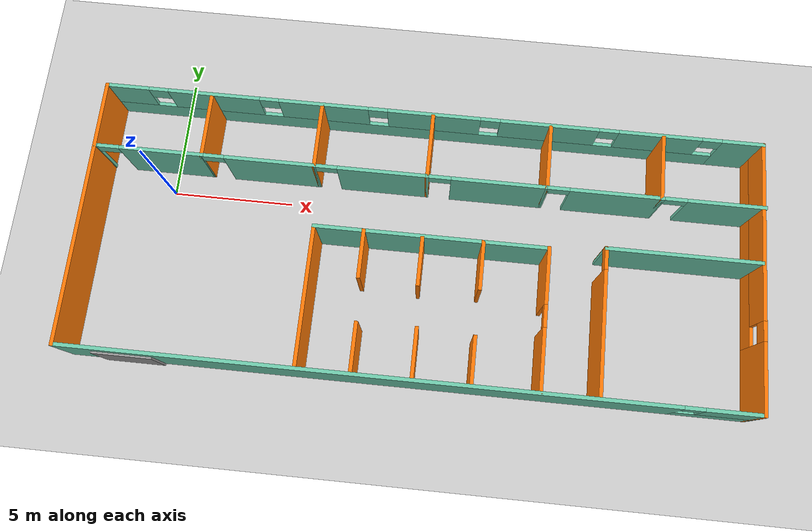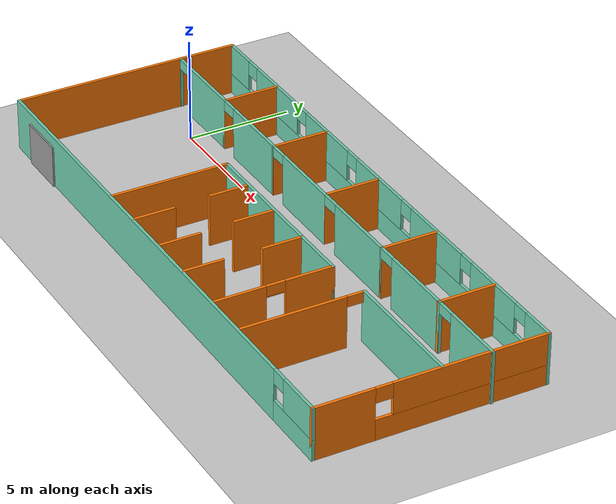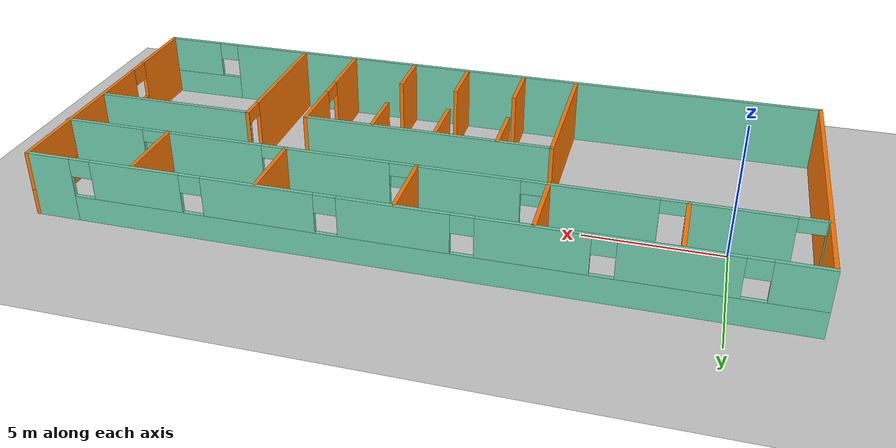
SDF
<sdf version="1.6">
 <world name="default">
  <model name="ground_plane">
   <static>1</static>
   <link name="link">
    <collision name="collision">
     <geometry><plane><normal>0 0 1</normal><size>100 100</size></plane></geometry>
     <surface>
      <contact><collide_bitmask>65535</collide_bitmask></contact>
      <friction><ode><mu>100</mu><mu2>50</mu2></ode></friction>
     </surface>
    </collision>
    <visual name="visual">
     <cast_shadows>0</cast_shadows>
     <geometry><plane><normal>0 0 1</normal><size>100 100</size></plane></geometry>
     <material>
      <script><uri>file://media/materials/scripts/gazebo.material</uri><name>Gazebo/Grey</name></script>
     </material>
    </visual>
   </link>
  </model>
  <model name="myoffice">
   <pose>10.6862 -1.75386 0 0 -0 0</pose>
   <link name="Door_7">
    <collision name="Door_7_Collision">
     <geometry><box><size>2.38961 0.2 2</size></box></geometry>
     <pose>0 0 1 0 -0 0</pose>
    </collision>
    <visual name="Door_7_Visual">
     <pose>0 0 1 0 -0 0</pose>
     <geometry><box><size>2.38961 0.2 2</size></box></geometry>
     <material>
      <script><uri>file://media/materials/scripts/gazebo.material</uri><name>Gazebo/Grey</name></script>
     </material>
    </visual>
    <pose>-11.023 -5.48096 0 0 -0 0</pose>
   </link>
   <link name="Wall_10">
    <pose>-11.3485 2.7385 0 0 -0 0</pose>
    <visual name="Wall_10_Visual_0">
     <pose>-2.1848 0 1.25 0 -0 0</pose>
     <geometry><box><size>0.130403 0.15 2.5</size></box></geometry>
     <material>
      <script><uri>file://media/materials/scripts/gazebo.material</uri><name>Gazebo/Grey</name></script>
      <ambient>0.435294 0.796078 0.67451 1</ambient>
     </material>
     <meta><layer>0</layer></meta>
    </visual>
    <collision name="Wall_10_Collision_0">
     <geometry><box><size>0.130403 0.15 2.5</size></box></geometry>
     <pose>-2.1848 0 1.25 0 -0 0</pose>
    </collision>
    <visual name="Wall_10_Visual_1">
     <pose>0.515202 0 1.25 0 -0 0</pose>
     <geometry><box><size>3.4696 0.15 2.5</size></box></geometry>
     <material>
      <script><uri>file://media/materials/scripts/gazebo.material</uri><name>Gazebo/Grey</name></script>
      <ambient>0.435294 0.796078 0.67451 1</ambient>
     </material>
     <meta><layer>0</layer></meta>
    </visual>
    <collision name="Wall_10_Collision_1">
     <geometry><box><size>3.4696 0.15 2.5</size></box></geometry>
     <pose>0.515202 0 1.25 0 -0 0</pose>
    </collision>
    <visual name="Wall_10_Visual_2">
     <pose>-1.6696 0 2.25 0 -0 0</pose>
     <geometry><box><size>0.9 0.15 0.5</size></box></geometry>
     <material>
      <script><uri>file://media/materials/scripts/gazebo.material</uri><name>Gazebo/Grey</name></script>
      <ambient>0.435294 0.796078 0.67451 1</ambient>
     </material>
     <meta><layer>0</layer></meta>
    </visual>
    <collision name="Wall_10_Collision_2">
     <geometry><box><size>0.9 0.15 0.5</size></box></geometry>
     <pose>-1.6696 0 2.25 0 -0 0</pose>
    </collision>
   </link>
   <link name="Wall_11">
    <collision name="Wall_11_Collision">
     <geometry><box><size>2.75 0.15 2.5</size></box></geometry>
     <pose>0 0 1.25 0 -0 0</pose>
    </collision>
    <visual name="Wall_11_Visual">
     <pose>0 0 1.25 0 -0 0</pose>
     <geometry><box><size>2.75 0.15 2.5</size></box></geometry>
     <material>
      <script><uri>file://media/materials/scripts/gazebo.material</uri><name>Gazebo/Grey</name></script>
      <ambient>0.996078 0.47451 0.0196078 1</ambient>
     </material>
     <meta><layer>0</layer></meta>
    </visual>
    <pose>-9.17347 4.0385 0 0 -0 1.5708</pose>
   </link>
   <link name="Wall_13">
    <pose>-6.87323 2.73825 0 0 -0 -0.000108</pose>
    <visual name="Wall_13_Visual_0">
     <pose>-2.33029 0 1.25 0 -0 0</pose>
     <geometry><box><size>0.089414 0.15 2.5</size></box></geometry>
     <material>
      <script><uri>file://media/materials/scripts/gazebo.material</uri><name>Gazebo/Grey</name></script>
      <ambient>0.435294 0.796078 0.67451 1</ambient>
     </material>
     <meta><layer>0</layer></meta>
    </visual>
    <collision name="Wall_13_Collision_0">
     <geometry><box><size>0.089414 0.15 2.5</size></box></geometry>
     <pose>-2.33029 0 1.25 0 -0 0</pose>
    </collision>
    <visual name="Wall_13_Visual_1">
     <pose>0.494707 0 1.25 0 -0 0</pose>
     <geometry><box><size>3.76059 0.15 2.5</size></box></geometry>
     <material>
      <script><uri>file://media/materials/scripts/gazebo.material</uri><name>Gazebo/Grey</name></script>
      <ambient>0.435294 0.796078 0.67451 1</ambient>
     </material>
     <meta><layer>0</layer></meta>
    </visual>
    <collision name="Wall_13_Collision_1">
     <geometry><box><size>3.76059 0.15 2.5</size></box></geometry>
     <pose>0.494707 0 1.25 0 -0 0</pose>
    </collision>
    <visual name="Wall_13_Visual_2">
     <pose>-1.83559 0 2.25 0 -0 0</pose>
     <geometry><box><size>0.9 0.15 0.5</size></box></geometry>
     <material>
      <script><uri>file://media/materials/scripts/gazebo.material</uri><name>Gazebo/Grey</name></script>
      <ambient>0.435294 0.796078 0.67451 1</ambient>
     </material>
     <meta><layer>0</layer></meta>
    </visual>
    <collision name="Wall_13_Collision_2">
     <geometry><box><size>0.9 0.15 0.5</size></box></geometry>
     <pose>-1.83559 0 2.25 0 -0 0</pose>
    </collision>
   </link>
   <link name="Wall_17">
    <collision name="Wall_17_Collision">
     <geometry><box><size>2.75 0.15 2.5</size></box></geometry>
     <pose>0 0 1.25 0 -0 0</pose>
    </collision>
    <visual name="Wall_17_Visual">
     <pose>0 0 1.25 0 -0 0</pose>
     <geometry><box><size>2.75 0.15 2.5</size></box></geometry>
     <material>
      <script><uri>file://media/materials/scripts/gazebo.material</uri><name>Gazebo/Grey</name></script>
      <ambient>0.996078 0.47451 0.0196078 1</ambient>
     </material>
     <meta><layer>0</layer></meta>
    </visual>
    <pose>-4.573 4.038 0 0 -0 1.5708</pose>
   </link>
   <link name="Wall_19">
    <pose>-2.273 2.738 0 0 -0 0</pose>
    <visual name="Wall_19_Visual_0">
     <pose>-2.3162 0 1.25 0 -0 0</pose>
     <geometry><box><size>0.117605 0.15 2.5</size></box></geometry>
     <material>
      <script><uri>file://media/materials/scripts/gazebo.material</uri><name>Gazebo/Grey</name></script>
      <ambient>0.435294 0.796078 0.67451 1</ambient>
     </material>
     <meta><layer>0</layer></meta>
    </visual>
    <collision name="Wall_19_Collision_0">
     <geometry><box><size>0.117605 0.15 2.5</size></box></geometry>
     <pose>-2.3162 0 1.25 0 -0 0</pose>
    </collision>
    <visual name="Wall_19_Visual_1">
     <pose>0.508802 0 1.25 0 -0 0</pose>
     <geometry><box><size>3.73239 0.15 2.5</size></box></geometry>
     <material>
      <script><uri>file://media/materials/scripts/gazebo.material</uri><name>Gazebo/Grey</name></script>
      <ambient>0.435294 0.796078 0.67451 1</ambient>
     </material>
     <meta><layer>0</layer></meta>
    </visual>
    <collision name="Wall_19_Collision_1">
     <geometry><box><size>3.73239 0.15 2.5</size></box></geometry>
     <pose>0.508802 0 1.25 0 -0 0</pose>
    </collision>
    <visual name="Wall_19_Visual_2">
     <pose>-1.8074 0 2.25 0 -0 0</pose>
     <geometry><box><size>0.9 0.15 0.5</size></box></geometry>
     <material>
      <script><uri>file://media/materials/scripts/gazebo.material</uri><name>Gazebo/Grey</name></script>
      <ambient>0.435294 0.796078 0.67451 1</ambient>
     </material>
     <meta><layer>0</layer></meta>
    </visual>
    <collision name="Wall_19_Collision_2">
     <geometry><box><size>0.9 0.15 0.5</size></box></geometry>
     <pose>-1.8074 0 2.25 0 -0 0</pose>
    </collision>
   </link>
   <link name="Wall_20">
    <collision name="Wall_20_Collision">
     <geometry><box><size>2.75 0.15 2.5</size></box></geometry>
     <pose>0 0 1.25 0 -0 0</pose>
    </collision>
    <visual name="Wall_20_Visual">
     <pose>0 0 1.25 0 -0 0</pose>
     <geometry><box><size>2.75 0.15 2.5</size></box></geometry>
     <material>
      <script><uri>file://media/materials/scripts/gazebo.material</uri><name>Gazebo/Grey</name></script>
      <ambient>0.996078 0.47451 0.0196078 1</ambient>
     </material>
     <meta><layer>0</layer></meta>
    </visual>
    <pose>0.027 4.038 0 0 -0 1.5708</pose>
   </link>
   <link name="Wall_22">
    <pose>2.452 2.738 0 0 -0 0</pose>
    <visual name="Wall_22_Visual_0">
     <pose>-2.42698 0 1.25 0 -0 0</pose>
     <geometry><box><size>0.146039 0.15 2.5</size></box></geometry>
     <material>
      <script><uri>file://media/materials/scripts/gazebo.material</uri><name>Gazebo/Grey</name></script>
      <ambient>0.435294 0.796078 0.67451 1</ambient>
     </material>
     <meta><layer>0</layer></meta>
    </visual>
    <collision name="Wall_22_Collision_0">
     <geometry><box><size>0.146039 0.15 2.5</size></box></geometry>
     <pose>-2.42698 0 1.25 0 -0 0</pose>
    </collision>
    <visual name="Wall_22_Visual_1">
     <pose>0.523019 0 1.25 0 -0 0</pose>
     <geometry><box><size>3.95396 0.15 2.5</size></box></geometry>
     <material>
      <script><uri>file://media/materials/scripts/gazebo.material</uri><name>Gazebo/Grey</name></script>
      <ambient>0.435294 0.796078 0.67451 1</ambient>
     </material>
     <meta><layer>0</layer></meta>
    </visual>
    <collision name="Wall_22_Collision_1">
     <geometry><box><size>3.95396 0.15 2.5</size></box></geometry>
     <pose>0.523019 0 1.25 0 -0 0</pose>
    </collision>
    <visual name="Wall_22_Visual_2">
     <pose>-1.90396 0 2.25 0 -0 0</pose>
     <geometry><box><size>0.9 0.15 0.5</size></box></geometry>
     <material>
      <script><uri>file://media/materials/scripts/gazebo.material</uri><name>Gazebo/Grey</name></script>
      <ambient>0.435294 0.796078 0.67451 1</ambient>
     </material>
     <meta><layer>0</layer></meta>
    </visual>
    <collision name="Wall_22_Collision_2">
     <geometry><box><size>0.9 0.15 0.5</size></box></geometry>
     <pose>-1.90396 0 2.25 0 -0 0</pose>
    </collision>
   </link>
   <link name="Wall_23">
    <collision name="Wall_23_Collision">
     <geometry><box><size>2.75 0.15 2.5</size></box></geometry>
     <pose>0 0 1.25 0 -0 0</pose>
    </collision>
    <visual name="Wall_23_Visual">
     <pose>0 0 1.25 0 -0 0</pose>
     <geometry><box><size>2.75 0.15 2.5</size></box></geometry>
     <material>
      <script><uri>file://media/materials/scripts/gazebo.material</uri><name>Gazebo/Grey</name></script>
      <ambient>0.996078 0.47451 0.0196078 1</ambient>
     </material>
     <meta><layer>0</layer></meta>
    </visual>
    <pose>4.877 4.038 0 0 -0 1.5708</pose>
   </link>
   <link name="Wall_25">
    <pose>7.177 2.738 0 0 -0 0</pose>
    <visual name="Wall_25_Visual_0">
     <pose>-2.33296 0 1.25 0 -0 0</pose>
     <geometry><box><size>0.084074 0.15 2.5</size></box></geometry>
     <material>
      <script><uri>file://media/materials/scripts/gazebo.material</uri><name>Gazebo/Grey</name></script>
      <ambient>0.435294 0.796078 0.67451 1</ambient>
     </material>
     <meta><layer>0</layer></meta>
    </visual>
    <collision name="Wall_25_Collision_0">
     <geometry><box><size>0.084074 0.15 2.5</size></box></geometry>
     <pose>-2.33296 0 1.25 0 -0 0</pose>
    </collision>
    <visual name="Wall_25_Visual_1">
     <pose>0.492037 0 1.25 0 -0 0</pose>
     <geometry><box><size>3.76593 0.15 2.5</size></box></geometry>
     <material>
      <script><uri>file://media/materials/scripts/gazebo.material</uri><name>Gazebo/Grey</name></script>
      <ambient>0.435294 0.796078 0.67451 1</ambient>
     </material>
     <meta><layer>0</layer></meta>
    </visual>
    <collision name="Wall_25_Collision_1">
     <geometry><box><size>3.76593 0.15 2.5</size></box></geometry>
     <pose>0.492037 0 1.25 0 -0 0</pose>
    </collision>
    <visual name="Wall_25_Visual_2">
     <pose>-1.84093 0 2.25 0 -0 0</pose>
     <geometry><box><size>0.9 0.15 0.5</size></box></geometry>
     <material>
      <script><uri>file://media/materials/scripts/gazebo.material</uri><name>Gazebo/Grey</name></script>
      <ambient>0.435294 0.796078 0.67451 1</ambient>
     </material>
     <meta><layer>0</layer></meta>
    </visual>
    <collision name="Wall_25_Collision_2">
     <geometry><box><size>0.9 0.15 0.5</size></box></geometry>
     <pose>-1.84093 0 2.25 0 -0 0</pose>
    </collision>
   </link>
   <link name="Wall_26">
    <collision name="Wall_26_Collision">
     <geometry><box><size>2.75 0.15 2.5</size></box></geometry>
     <pose>0 0 1.25 0 -0 0</pose>
    </collision>
    <visual name="Wall_26_Visual">
     <pose>0 0 1.25 0 -0 0</pose>
     <geometry><box><size>2.75 0.15 2.5</size></box></geometry>
     <material>
      <script><uri>file://media/materials/scripts/gazebo.material</uri><name>Gazebo/Grey</name></script>
      <ambient>0.996078 0.47451 0.0196078 1</ambient>
     </material>
     <meta><layer>0</layer></meta>
    </visual>
    <pose>9.477 4.038 0 0 -0 1.5708</pose>
   </link>
   <link name="Wall_28">
    <pose>11.527 2.738 0 0 -0 0</pose>
    <visual name="Wall_28_Visual_0">
     <pose>-2.02885 0 1.25 0 -0 0</pose>
     <geometry><box><size>0.19231 0.15 2.5</size></box></geometry>
     <material>
      <script><uri>file://media/materials/scripts/gazebo.material</uri><name>Gazebo/Grey</name></script>
      <ambient>0.435294 0.796078 0.67451 1</ambient>
     </material>
     <meta><layer>0</layer></meta>
    </visual>
    <collision name="Wall_28_Collision_0">
     <geometry><box><size>0.19231 0.15 2.5</size></box></geometry>
     <pose>-2.02885 0 1.25 0 -0 0</pose>
    </collision>
    <visual name="Wall_28_Visual_1">
     <pose>0.546155 0 1.25 0 -0 0</pose>
     <geometry><box><size>3.15769 0.15 2.5</size></box></geometry>
     <material>
      <script><uri>file://media/materials/scripts/gazebo.material</uri><name>Gazebo/Grey</name></script>
      <ambient>0.435294 0.796078 0.67451 1</ambient>
     </material>
     <meta><layer>0</layer></meta>
    </visual>
    <collision name="Wall_28_Collision_1">
     <geometry><box><size>3.15769 0.15 2.5</size></box></geometry>
     <pose>0.546155 0 1.25 0 -0 0</pose>
    </collision>
    <visual name="Wall_28_Visual_2">
     <pose>-1.48269 0 2.25 0 -0 0</pose>
     <geometry><box><size>0.9 0.15 0.5</size></box></geometry>
     <material>
      <script><uri>file://media/materials/scripts/gazebo.material</uri><name>Gazebo/Grey</name></script>
      <ambient>0.435294 0.796078 0.67451 1</ambient>
     </material>
     <meta><layer>0</layer></meta>
    </visual>
    <collision name="Wall_28_Collision_2">
     <geometry><box><size>0.9 0.15 0.5</size></box></geometry>
     <pose>-1.48269 0 2.25 0 -0 0</pose>
    </collision>
   </link>
   <link name="Wall_33">
    <pose>7.35769 -2.47616 0 0 -0 1.5708</pose>
    <visual name="Wall_33_Visual_0">
     <pose>-0.46098 0 1.25 0 -0 0</pose>
     <geometry><box><size>5.07804 0.15 2.5</size></box></geometry>
     <material>
      <script><uri>file://media/materials/scripts/gazebo.material</uri><name>Gazebo/Grey</name></script>
      <ambient>0.996078 0.47451 0.0196078 1</ambient>
     </material>
     <meta><layer>0</layer></meta>
    </visual>
    <collision name="Wall_33_Collision_0">
     <geometry><box><size>5.07804 0.15 2.5</size></box></geometry>
     <pose>-0.46098 0 1.25 0 -0 0</pose>
    </collision>
    <visual name="Wall_33_Visual_1">
     <pose>2.98902 0 1.25 0 -0 0</pose>
     <geometry><box><size>0.021959 0.15 2.5</size></box></geometry>
     <material>
      <script><uri>file://media/materials/scripts/gazebo.material</uri><name>Gazebo/Grey</name></script>
      <ambient>0.996078 0.47451 0.0196078 1</ambient>
     </material>
     <meta><layer>0</layer></meta>
    </visual>
    <collision name="Wall_33_Collision_1">
     <geometry><box><size>0.021959 0.15 2.5</size></box></geometry>
     <pose>2.98902 0 1.25 0 -0 0</pose>
    </collision>
    <visual name="Wall_33_Visual_2">
     <pose>2.52804 0 2.25 0 -0 0</pose>
     <geometry><box><size>0.9 0.15 0.5</size></box></geometry>
     <material>
      <script><uri>file://media/materials/scripts/gazebo.material</uri><name>Gazebo/Grey</name></script>
      <ambient>0.996078 0.47451 0.0196078 1</ambient>
     </material>
     <meta><layer>0</layer></meta>
    </visual>
    <collision name="Wall_33_Collision_2">
     <geometry><box><size>0.9 0.15 0.5</size></box></geometry>
     <pose>2.52804 0 2.25 0 -0 0</pose>
    </collision>
   </link>
   <link name="Wall_34">
    <collision name="Wall_34_Collision">
     <geometry><box><size>6.25 0.15 2.5</size></box></geometry>
     <pose>0 0 1.25 0 -0 0</pose>
    </collision>
    <visual name="Wall_34_Visual">
     <pose>0 0 1.25 0 -0 0</pose>
     <geometry><box><size>6.25 0.15 2.5</size></box></geometry>
     <material>
      <script><uri>file://media/materials/scripts/gazebo.material</uri><name>Gazebo/Grey</name></script>
      <ambient>0.435294 0.796078 0.67451 1</ambient>
     </material>
     <meta><layer>0</layer></meta>
    </visual>
    <pose>10.4077 0.448836 0 0 -0 0</pose>
   </link>
   <link name="Wall_36">
    <collision name="Wall_36_Collision">
     <geometry><box><size>5.75 0.15 2.5</size></box></geometry>
     <pose>0 0 1.25 0 -0 0</pose>
    </collision>
    <visual name="Wall_36_Visual">
     <pose>0 0 1.25 0 -0 0</pose>
     <geometry><box><size>5.75 0.15 2.5</size></box></geometry>
     <material>
      <script><uri>file://media/materials/scripts/gazebo.material</uri><name>Gazebo/Grey</name></script>
      <ambient>0.996078 0.47451 0.0196078 1</ambient>
     </material>
     <meta><layer>0</layer></meta>
    </visual>
    <pose>-4.24 -2.57456 0 0 -0 1.5708</pose>
   </link>
   <link name="Wall_37">
    <collision name="Wall_37_Collision">
     <geometry><box><size>9.5 0.15 2.5</size></box></geometry>
     <pose>0 0 1.25 0 -0 0</pose>
    </collision>
    <visual name="Wall_37_Visual">
     <pose>0 0 1.25 0 -0 0</pose>
     <geometry><box><size>9.5 0.15 2.5</size></box></geometry>
     <material>
      <script><uri>file://media/materials/scripts/gazebo.material</uri><name>Gazebo/Grey</name></script>
      <ambient>0.435294 0.796078 0.67451 1</ambient>
     </material>
     <meta><layer>0</layer></meta>
    </visual>
    <pose>0.435003 0.225437 0 0 -0 0</pose>
   </link>
   <link name="Wall_38">
    <pose>5.11 -2.57456 0 0 -0 -1.5708</pose>
    <visual name="Wall_38_Visual_0">
     <pose>-1.71221 0 1.25 0 -0 0</pose>
     <geometry><box><size>2.32558 0.15 2.5</size></box></geometry>
     <material>
      <script><uri>file://media/materials/scripts/gazebo.material</uri><name>Gazebo/Grey</name></script>
      <ambient>0.996078 0.47451 0.0196078 1</ambient>
     </material>
     <meta><layer>0</layer></meta>
    </visual>
    <collision name="Wall_38_Collision_0">
     <geometry><box><size>2.32558 0.15 2.5</size></box></geometry>
     <pose>-1.71221 0 1.25 0 -0 0</pose>
    </collision>
    <visual name="Wall_38_Visual_1">
     <pose>1.61279 0 1.25 0 -0 0</pose>
     <geometry><box><size>2.52442 0.15 2.5</size></box></geometry>
     <material>
      <script><uri>file://media/materials/scripts/gazebo.material</uri><name>Gazebo/Grey</name></script>
      <ambient>0.996078 0.47451 0.0196078 1</ambient>
     </material>
     <meta><layer>0</layer></meta>
    </visual>
    <collision name="Wall_38_Collision_1">
     <geometry><box><size>2.52442 0.15 2.5</size></box></geometry>
     <pose>1.61279 0 1.25 0 -0 0</pose>
    </collision>
    <visual name="Wall_38_Visual_2">
     <pose>-0.099422 0 2.25 0 -0 0</pose>
     <geometry><box><size>0.9 0.15 0.5</size></box></geometry>
     <material>
      <script><uri>file://media/materials/scripts/gazebo.material</uri><name>Gazebo/Grey</name></script>
      <ambient>0.996078 0.47451 0.0196078 1</ambient>
     </material>
     <meta><layer>0</layer></meta>
    </visual>
    <collision name="Wall_38_Collision_2">
     <geometry><box><size>0.9 0.15 0.5</size></box></geometry>
     <pose>-0.099422 0 2.25 0 -0 0</pose>
    </collision>
   </link>
   <link name="Wall_4">
    <collision name="Wall_4_Collision">
     <geometry><box><size>11 0.15 2.5</size></box></geometry>
     <pose>0 0 1.25 0 -0 0</pose>
    </collision>
    <visual name="Wall_4_Visual">
     <pose>0 0 1.25 0 -0 0</pose>
     <geometry><box><size>11 0.15 2.5</size></box></geometry>
     <material>
      <script><uri>file://media/materials/scripts/gazebo.material</uri><name>Gazebo/Grey</name></script>
      <ambient>0.996078 0.47451 0.0196078 1</ambient>
     </material>
     <meta><layer>0</layer></meta>
    </visual>
    <pose>-13.577 0 0 0 -0 -1.5708</pose>
   </link>
   <link name="Wall_47">
    <collision name="Wall_47_Collision">
     <geometry><box><size>2 0.15 2.5</size></box></geometry>
     <pose>0 0 1.25 0 -0 0</pose>
    </collision>
    <visual name="Wall_47_Visual">
     <pose>0 0 1.25 0 -0 0</pose>
     <geometry><box><size>2 0.15 2.5</size></box></geometry>
     <material>
      <script><uri>file://media/materials/scripts/gazebo.material</uri><name>Gazebo/Grey</name></script>
      <ambient>0.996078 0.47451 0.0196078 1</ambient>
     </material>
     <meta><layer>0</layer></meta>
    </visual>
    <pose>-2.11198 -4.39636 0 0 -0 1.5708</pose>
   </link>
   <link name="Wall_49">
    <collision name="Wall_49_Collision">
     <geometry><box><size>2 0.15 2.5</size></box></geometry>
     <pose>0 0 1.25 0 -0 0</pose>
    </collision>
    <visual name="Wall_49_Visual">
     <pose>0 0 1.25 0 -0 0</pose>
     <geometry><box><size>2 0.15 2.5</size></box></geometry>
     <material>
      <script><uri>file://media/materials/scripts/gazebo.material</uri><name>Gazebo/Grey</name></script>
      <ambient>0.996078 0.47451 0.0196078 1</ambient>
     </material>
     <meta><layer>0</layer></meta>
    </visual>
    <pose>0.228837 -4.36976 0 0 -0 1.5708</pose>
   </link>
   <link name="Wall_51">
    <collision name="Wall_51_Collision">
     <geometry><box><size>2 0.15 2.5</size></box></geometry>
     <pose>0 0 1.25 0 -0 0</pose>
    </collision>
    <visual name="Wall_51_Visual">
     <pose>0 0 1.25 0 -0 0</pose>
     <geometry><box><size>2 0.15 2.5</size></box></geometry>
     <material>
      <script><uri>file://media/materials/scripts/gazebo.material</uri><name>Gazebo/Grey</name></script>
      <ambient>0.996078 0.47451 0.0196078 1</ambient>
     </material>
     <meta><layer>0</layer></meta>
    </visual>
    <pose>2.48985 -4.47616 0 0 -0 1.5708</pose>
   </link>
   <link name="Wall_53">
    <collision name="Wall_53_Collision">
     <geometry><box><size>2 0.15 2.5</size></box></geometry>
     <pose>0 0 1.25 0 -0 0</pose>
    </collision>
    <visual name="Wall_53_Visual">
     <pose>0 0 1.25 0 -0 0</pose>
     <geometry><box><size>2 0.15 2.5</size></box></geometry>
     <material>
      <script><uri>file://media/materials/scripts/gazebo.material</uri><name>Gazebo/Grey</name></script>
      <ambient>0.996078 0.47451 0.0196078 1</ambient>
     </material>
     <meta><layer>0</layer></meta>
    </visual>
    <pose>-2.24498 -0.713522 0 0 -0 -1.5708</pose>
   </link>
   <link name="Wall_55">
    <collision name="Wall_55_Collision">
     <geometry><box><size>2 0.15 2.5</size></box></geometry>
     <pose>0 0 1.25 0 -0 0</pose>
    </collision>
    <visual name="Wall_55_Visual">
     <pose>0 0 1.25 0 -0 0</pose>
     <geometry><box><size>2 0.15 2.5</size></box></geometry>
     <material>
      <script><uri>file://media/materials/scripts/gazebo.material</uri><name>Gazebo/Grey</name></script>
      <ambient>0.996078 0.47451 0.0196078 1</ambient>
     </material>
     <meta><layer>0</layer></meta>
    </visual>
    <pose>0.095836 -0.793322 0 0 -0 -1.5708</pose>
   </link>
   <link name="Wall_57">
    <collision name="Wall_57_Collision">
     <geometry><box><size>2 0.15 2.5</size></box></geometry>
     <pose>0 0 1.25 0 -0 0</pose>
    </collision>
    <visual name="Wall_57_Visual">
     <pose>0 0 1.25 0 -0 0</pose>
     <geometry><box><size>2 0.15 2.5</size></box></geometry>
     <material>
      <script><uri>file://media/materials/scripts/gazebo.material</uri><name>Gazebo/Grey</name></script>
      <ambient>0.996078 0.47451 0.0196078 1</ambient>
     </material>
     <meta><layer>0</layer></meta>
    </visual>
    <pose>2.51645 -0.713522 0 0 -0 -1.5708</pose>
   </link>
   <link name="Wall_6">
    <pose>-0.027 -5.425 0 0 -0 0</pose>
    <visual name="Wall_6_Visual_0">
     <pose>-1.55124 0 1.25 0 -0 0</pose>
     <geometry><box><size>24.1475 0.15 2.5</size></box></geometry>
     <material>
      <script><uri>file://media/materials/scripts/gazebo.material</uri><name>Gazebo/Grey</name></script>
      <ambient>0.435294 0.796078 0.67451 1</ambient>
     </material>
     <meta><layer>0</layer></meta>
    </visual>
    <collision name="Wall_6_Collision_0">
     <geometry><box><size>24.1475 0.15 2.5</size></box></geometry>
     <pose>-1.55124 0 1.25 0 -0 0</pose>
    </collision>
    <visual name="Wall_6_Visual_1">
     <pose>12.0738 0 0.5 0 -0 0</pose>
     <geometry><box><size>3.10248 0.15 1</size></box></geometry>
     <material>
      <script><uri>file://media/materials/scripts/gazebo.material</uri><name>Gazebo/Grey</name></script>
      <ambient>0.435294 0.796078 0.67451 1</ambient>
     </material>
     <meta><layer>0</layer></meta>
    </visual>
    <collision name="Wall_6_Collision_1">
     <geometry><box><size>3.10248 0.15 1</size></box></geometry>
     <pose>12.0738 0 0.5 0 -0 0</pose>
    </collision>
    <visual name="Wall_6_Visual_2">
     <pose>12.4738 0 1.75 0 -0 0</pose>
     <geometry><box><size>2.30248 0.15 1.5</size></box></geometry>
     <material>
      <script><uri>file://media/materials/scripts/gazebo.material</uri><name>Gazebo/Grey</name></script>
      <ambient>0.435294 0.796078 0.67451 1</ambient>
     </material>
     <meta><layer>0</layer></meta>
    </visual>
    <collision name="Wall_6_Collision_2">
     <geometry><box><size>2.30248 0.15 1.5</size></box></geometry>
     <pose>12.4738 0 1.75 0 -0 0</pose>
    </collision>
    <visual name="Wall_6_Visual_3">
     <pose>10.9225 0 2.15 0 -0 0</pose>
     <geometry><box><size>0.8 0.15 0.7</size></box></geometry>
     <material>
      <script><uri>file://media/materials/scripts/gazebo.material</uri><name>Gazebo/Grey</name></script>
      <ambient>0.435294 0.796078 0.67451 1</ambient>
     </material>
     <meta><layer>0</layer></meta>
    </visual>
    <collision name="Wall_6_Collision_3">
     <geometry><box><size>0.8 0.15 0.7</size></box></geometry>
     <pose>10.9225 0 2.15 0 -0 0</pose>
    </collision>
   </link>
   <link name="Wall_7">
    <pose>13.523 0 0 0 -0 1.5708</pose>
    <visual name="Wall_7_Visual_0">
     <pose>-4.06787 0 1.25 0 -0 0</pose>
     <geometry><box><size>2.86426 0.15 2.5</size></box></geometry>
     <material>
      <script><uri>file://media/materials/scripts/gazebo.material</uri><name>Gazebo/Grey</name></script>
      <ambient>0.996078 0.47451 0.0196078 1</ambient>
     </material>
     <meta><layer>0</layer></meta>
    </visual>
    <collision name="Wall_7_Collision_0">
     <geometry><box><size>2.86426 0.15 2.5</size></box></geometry>
     <pose>-4.06787 0 1.25 0 -0 0</pose>
    </collision>
    <visual name="Wall_7_Visual_1">
     <pose>1.43213 0 0.5 0 -0 0</pose>
     <geometry><box><size>8.13574 0.15 1</size></box></geometry>
     <material>
      <script><uri>file://media/materials/scripts/gazebo.material</uri><name>Gazebo/Grey</name></script>
      <ambient>0.996078 0.47451 0.0196078 1</ambient>
     </material>
     <meta><layer>0</layer></meta>
    </visual>
    <collision name="Wall_7_Collision_1">
     <geometry><box><size>8.13574 0.15 1</size></box></geometry>
     <pose>1.43213 0 0.5 0 -0 0</pose>
    </collision>
    <visual name="Wall_7_Visual_2">
     <pose>1.83213 0 1.75 0 -0 0</pose>
     <geometry><box><size>7.33574 0.15 1.5</size></box></geometry>
     <material>
      <script><uri>file://media/materials/scripts/gazebo.material</uri><name>Gazebo/Grey</name></script>
      <ambient>0.996078 0.47451 0.0196078 1</ambient>
     </material>
     <meta><layer>0</layer></meta>
    </visual>
    <collision name="Wall_7_Collision_2">
     <geometry><box><size>7.33574 0.15 1.5</size></box></geometry>
     <pose>1.83213 0 1.75 0 -0 0</pose>
    </collision>
    <visual name="Wall_7_Visual_3">
     <pose>-2.23574 0 2.15 0 -0 0</pose>
     <geometry><box><size>0.8 0.15 0.7</size></box></geometry>
     <material>
      <script><uri>file://media/materials/scripts/gazebo.material</uri><name>Gazebo/Grey</name></script>
      <ambient>0.996078 0.47451 0.0196078 1</ambient>
     </material>
     <meta><layer>0</layer></meta>
    </visual>
    <collision name="Wall_7_Collision_3">
     <geometry><box><size>0.8 0.15 0.7</size></box></geometry>
     <pose>-2.23574 0 2.15 0 -0 0</pose>
    </collision>
   </link>
   <link name="Wall_8">
    <pose>-0.027 5.425 0 0 -0 3.14159</pose>
    <visual name="Wall_8_Visual_0">
     <pose>-12.7531 0 1.25 0 -0 0</pose>
     <geometry><box><size>1.74388 0.15 2.5</size></box></geometry>
     <material>
      <script><uri>file://media/materials/scripts/gazebo.material</uri><name>Gazebo/Grey</name></script>
      <ambient>0.435294 0.796078 0.67451 1</ambient>
     </material>
     <meta><layer>0</layer></meta>
    </visual>
    <collision name="Wall_8_Collision_0">
     <geometry><box><size>1.74388 0.15 2.5</size></box></geometry>
     <pose>-12.7531 0 1.25 0 -0 0</pose>
    </collision>
    <visual name="Wall_8_Visual_1">
     <pose>0.87194 0 0.5 0 -0 0</pose>
     <geometry><box><size>25.5061 0.15 1</size></box></geometry>
     <material>
      <script><uri>file://media/materials/scripts/gazebo.material</uri><name>Gazebo/Grey</name></script>
      <ambient>0.435294 0.796078 0.67451 1</ambient>
     </material>
     <meta><layer>0</layer></meta>
    </visual>
    <collision name="Wall_8_Collision_1">
     <geometry><box><size>25.5061 0.15 1</size></box></geometry>
     <pose>0.87194 0 0.5 0 -0 0</pose>
    </collision>
    <visual name="Wall_8_Visual_2">
     <pose>-9.3797 0 1.75 0 -0 0</pose>
     <geometry><box><size>3.40283 0.15 1.5</size></box></geometry>
     <material>
      <script><uri>file://media/materials/scripts/gazebo.material</uri><name>Gazebo/Grey</name></script>
      <ambient>0.435294 0.796078 0.67451 1</ambient>
     </material>
     <meta><layer>0</layer></meta>
    </visual>
    <collision name="Wall_8_Collision_2">
     <geometry><box><size>3.40283 0.15 1.5</size></box></geometry>
     <pose>-9.3797 0 1.75 0 -0 0</pose>
    </collision>
    <visual name="Wall_8_Visual_3">
     <pose>-4.84437 0 1.75 0 -0 0</pose>
     <geometry><box><size>4.06784 0.15 1.5</size></box></geometry>
     <material>
      <script><uri>file://media/materials/scripts/gazebo.material</uri><name>Gazebo/Grey</name></script>
      <ambient>0.435294 0.796078 0.67451 1</ambient>
     </material>
     <meta><layer>0</layer></meta>
    </visual>
    <collision name="Wall_8_Collision_3">
     <geometry><box><size>4.06784 0.15 1.5</size></box></geometry>
     <pose>-4.84437 0 1.75 0 -0 0</pose>
    </collision>
    <visual name="Wall_8_Visual_4">
     <pose>-0.082935 0 1.75 0 -0 0</pose>
     <geometry><box><size>3.85503 0.15 1.5</size></box></geometry>
     <material>
      <script><uri>file://media/materials/scripts/gazebo.material</uri><name>Gazebo/Grey</name></script>
      <ambient>0.435294 0.796078 0.67451 1</ambient>
     </material>
     <meta><layer>0</layer></meta>
    </visual>
    <collision name="Wall_8_Collision_4">
     <geometry><box><size>3.85503 0.15 1.5</size></box></geometry>
     <pose>-0.082935 0 1.75 0 -0 0</pose>
    </collision>
    <visual name="Wall_8_Visual_5">
     <pose>4.5056 0 1.75 0 -0 0</pose>
     <geometry><box><size>3.72203 0.15 1.5</size></box></geometry>
     <material>
      <script><uri>file://media/materials/scripts/gazebo.material</uri><name>Gazebo/Grey</name></script>
      <ambient>0.435294 0.796078 0.67451 1</ambient>
     </material>
     <meta><layer>0</layer></meta>
    </visual>
    <collision name="Wall_8_Collision_5">
     <geometry><box><size>3.72203 0.15 1.5</size></box></geometry>
     <pose>4.5056 0 1.75 0 -0 0</pose>
    </collision>
    <visual name="Wall_8_Visual_6">
     <pose>9.08083 0 1.75 0 -0 0</pose>
     <geometry><box><size>3.82843 0.15 1.5</size></box></geometry>
     <material>
      <script><uri>file://media/materials/scripts/gazebo.material</uri><name>Gazebo/Grey</name></script>
      <ambient>0.435294 0.796078 0.67451 1</ambient>
     </material>
     <meta><layer>0</layer></meta>
    </visual>
    <collision name="Wall_8_Collision_6">
     <geometry><box><size>3.82843 0.15 1.5</size></box></geometry>
     <pose>9.08083 0 1.75 0 -0 0</pose>
    </collision>
    <visual name="Wall_8_Visual_7">
     <pose>12.71 0 1.75 0 -0 0</pose>
     <geometry><box><size>1.82995 0.15 1.5</size></box></geometry>
     <material>
      <script><uri>file://media/materials/scripts/gazebo.material</uri><name>Gazebo/Grey</name></script>
      <ambient>0.435294 0.796078 0.67451 1</ambient>
     </material>
     <meta><layer>0</layer></meta>
    </visual>
    <collision name="Wall_8_Collision_7">
     <geometry><box><size>1.82995 0.15 1.5</size></box></geometry>
     <pose>12.71 0 1.75 0 -0 0</pose>
    </collision>
    <visual name="Wall_8_Visual_8">
     <pose>-11.4811 0 2.15 0 -0 0</pose>
     <geometry><box><size>0.8 0.15 0.7</size></box></geometry>
     <material>
      <script><uri>file://media/materials/scripts/gazebo.material</uri><name>Gazebo/Grey</name></script>
      <ambient>0.435294 0.796078 0.67451 1</ambient>
     </material>
     <meta><layer>0</layer></meta>
    </visual>
    <collision name="Wall_8_Collision_8">
     <geometry><box><size>0.8 0.15 0.7</size></box></geometry>
     <pose>-11.4811 0 2.15 0 -0 0</pose>
    </collision>
    <visual name="Wall_8_Visual_9">
     <pose>-7.27829 0 2.15 0 -0 0</pose>
     <geometry><box><size>0.8 0.15 0.7</size></box></geometry>
     <material>
      <script><uri>file://media/materials/scripts/gazebo.material</uri><name>Gazebo/Grey</name></script>
      <ambient>0.435294 0.796078 0.67451 1</ambient>
     </material>
     <meta><layer>0</layer></meta>
    </visual>
    <collision name="Wall_8_Collision_9">
     <geometry><box><size>0.8 0.15 0.7</size></box></geometry>
     <pose>-7.27829 0 2.15 0 -0 0</pose>
    </collision>
    <visual name="Wall_8_Visual_10">
     <pose>-2.41045 0 2.15 0 -0 0</pose>
     <geometry><box><size>0.8 0.15 0.7</size></box></geometry>
     <material>
      <script><uri>file://media/materials/scripts/gazebo.material</uri><name>Gazebo/Grey</name></script>
      <ambient>0.435294 0.796078 0.67451 1</ambient>
     </material>
     <meta><layer>0</layer></meta>
    </visual>
    <collision name="Wall_8_Collision_10">
     <geometry><box><size>0.8 0.15 0.7</size></box></geometry>
     <pose>-2.41045 0 2.15 0 -0 0</pose>
    </collision>
    <visual name="Wall_8_Visual_11">
     <pose>2.24458 0 2.15 0 -0 0</pose>
     <geometry><box><size>0.8 0.15 0.7</size></box></geometry>
     <material>
      <script><uri>file://media/materials/scripts/gazebo.material</uri><name>Gazebo/Grey</name></script>
      <ambient>0.435294 0.796078 0.67451 1</ambient>
     </material>
     <meta><layer>0</layer></meta>
    </visual>
    <collision name="Wall_8_Collision_11">
     <geometry><box><size>0.8 0.15 0.7</size></box></geometry>
     <pose>2.24458 0 2.15 0 -0 0</pose>
    </collision>
    <visual name="Wall_8_Visual_12">
     <pose>6.76662 0 2.15 0 -0 0</pose>
     <geometry><box><size>0.8 0.15 0.7</size></box></geometry>
     <material>
      <script><uri>file://media/materials/scripts/gazebo.material</uri><name>Gazebo/Grey</name></script>
      <ambient>0.435294 0.796078 0.67451 1</ambient>
     </material>
     <meta><layer>0</layer></meta>
    </visual>
    <collision name="Wall_8_Collision_12">
     <geometry><box><size>0.8 0.15 0.7</size></box></geometry>
     <pose>6.76662 0 2.15 0 -0 0</pose>
    </collision>
    <visual name="Wall_8_Visual_13">
     <pose>11.3951 0 2.15 0 -0 0</pose>
     <geometry><box><size>0.8 0.15 0.7</size></box></geometry>
     <material>
      <script><uri>file://media/materials/scripts/gazebo.material</uri><name>Gazebo/Grey</name></script>
      <ambient>0.435294 0.796078 0.67451 1</ambient>
     </material>
     <meta><layer>0</layer></meta>
    </visual>
    <collision name="Wall_8_Collision_13">
     <geometry><box><size>0.8 0.15 0.7</size></box></geometry>
     <pose>11.3951 0 2.15 0 -0 0</pose>
    </collision>
   </link>
   <static>1</static>
  </model>
 </world>
</sdf>
